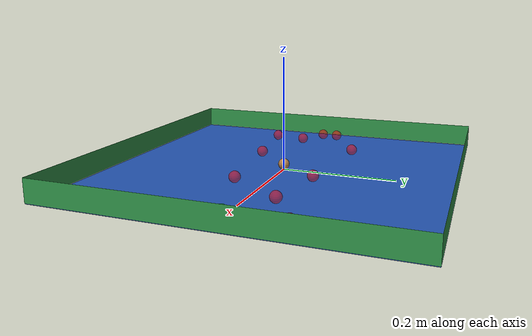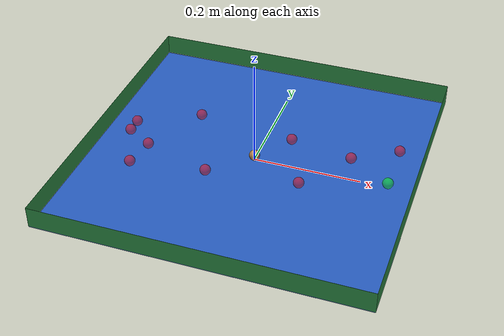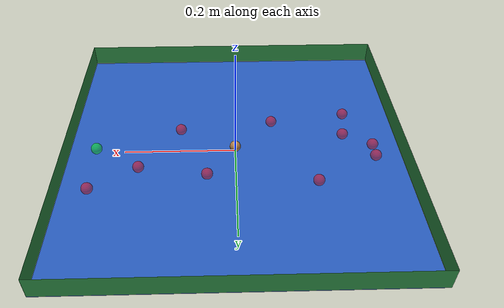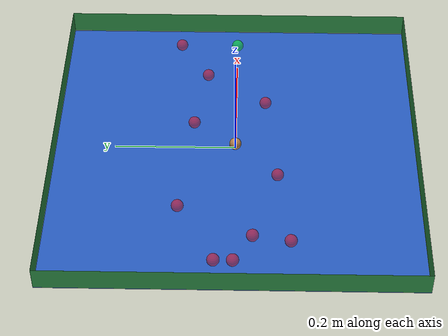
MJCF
<mujoco model="Particle Control">
  <include file="../common.xml"/>
  <!-- modified from: https://github.com/google-deepmind/dm_control/blob/main/dm_control/suite/point_mass.xml -->
  <include file="particle_modified.xml" />

  <size memory="10K"/>

  <custom>
    <numeric name="task_risk" data="1" />
    <numeric name="agent_planner" data="0" />
    <numeric name="agent_horizon" data="0.5" />
    <numeric name="agent_timestep" data="0.01" />
    <numeric name="agent_policy_width" data="0.0015" />
    <numeric name="sampling_spline_points" data="5" />
    <numeric name="sampling_exploration" data="0.01" />
    <numeric name="gradient_spline_points" data="5" />
  </custom>

  <sensor>
    <user name="Position" dim="2" user="0 5.0 0.0 10.0" />
    <user name="Velocity" dim="2" user="0 0.1 0.0 1.0" />
    <user name="Control" dim="2" user="0 0.1 0.0 1.0" />
    <framepos name="trace0" objtype="site" objname="tip"/>
    <framepos name="position" objtype="site" objname="tip"/>
    <framelinvel name="velocity" objtype="site" objname="tip"/>
    <framepos name="goal" objtype="body" objname="goal"/>
  </sensor>

  <worldbody>
    <body name="goal" mocap="true" pos="0.25 0 0.01" quat="1 0 0 0">
        <geom type="sphere" size=".01" contype="0" conaffinity="0" rgba="0 1 0 .5"/>
    </body>
  </worldbody>

</mujoco>

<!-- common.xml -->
<mujoco>

  <visual>
    <headlight ambient=".4 .4 .4" diffuse=".8 .8 .8" specular="0.1 0.1 0.1"/>
    <map znear=".01"/>
    <quality shadowsize="2048"/>
    <global elevation="-15"/>
  </visual>

  <asset>
    <texture name="blue_grid" type="2d" builtin="checker" rgb1=".02 .14 .44" rgb2=".27 .55 1" width="300" height="300" mark="edge" markrgb="1 1 1"/>
    <material name="blue_grid" texture="blue_grid" texrepeat="1 1" texuniform="true" reflectance=".2"/>

    <texture name="grey_grid" type="2d" builtin="checker" rgb1=".26 .26 .26" rgb2=".6 .6 .6" width="300" height="300" mark="edge" markrgb="1 1 1"/>
    <material name="grey_grid" texture="grey_grid" texrepeat="1 1" texuniform="true" reflectance=".2"/>
    <texture name="skybox" type="skybox" builtin="gradient" rgb1=".66 .79 1" rgb2=".9 .91 .93" width="800" height="800"/>

    <material name="self" rgba=".7 .5 .3 1"/>
    <material name="self_default" rgba=".7 .5 .3 1"/>
    <material name="self_highlight" rgba="0 .5 .3 1"/>
    <material name="effector" rgba=".7 .4 .2 1"/>
    <material name="effector_default" rgba=".7 .4 .2 1"/>
    <material name="effector_highlight" rgba="0 .5 .3 1"/>
    <material name="decoration" rgba=".2 .6 .3 1"/>
    <material name="eye" rgba="0 .2 1 1"/>
    <material name="target" rgba=".6 .3 .3 1"/>
    <material name="target_default" rgba=".6 .3 .3 1"/>
    <material name="target_highlight" rgba=".6 .3 .3 .4"/>
    <material name="site" rgba=".5 .5 .5 .3"/>
  </asset>
</mujoco>

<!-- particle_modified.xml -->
<mujoco model="Particle">
  <option timestep="0.01">
    <flag contact="enable" multiccd="enable"/>
  </option>

  <default>
    <joint type="hinge" axis="0 0 1" limited="true" range="-.29 .29" damping="1"/>
    <motor gear=".1" ctrlrange="-1 1" ctrllimited="true"/>
  </default>

  <worldbody>
    <body name="goal" mocap="true" pos="0.25 0 0.01" quat="1 0 0 0">
        <geom type="sphere" name="goal" size=".01" contype="0" conaffinity="0" rgba="0 1 0 .5"/>
    </body>
    <body name="obstacle_0" mocap="true" pos="-0.25 0 0.01" quat="1 0 0 0">
      <geom type="sphere" name="obstacle_0" size=".01" rgba="1 0 0 .5"/>
    </body>
    <body name="obstacle_1" mocap="true" pos="0.17 0.05 0.01" quat="1 0 0 0">
        <geom type="sphere" name="obstacle_1" size=".01" rgba="1 0 0 .5"/>
    </body>
    <body name="obstacle_2" mocap="true" pos="0.1 -0.05 0.01" quat="1 0 0 0">
        <geom type="sphere" name="obstacle_2" size=".01" rgba="1 0 0 .5"/>
    </body>
    <body name="obstacle_3" mocap="true" pos="0.05 0.07 0.01" quat="1 0 0 0">
        <geom type="sphere" name="obstacle_3" size=".01" rgba="1 0 0 .5"/>
    </body>
    <body name="obstacle_4" mocap="true" pos="-0.07 -0.07 0.01" quat="1 0 0 0">
        <geom type="sphere" name="obstacle_4" size=".01" rgba="1 0 0 .5"/>
    </body>
    <body name="obstacle_5" mocap="true" pos="-0.14 0.09 0.01" quat="1 0 0 0">
      <geom type="sphere" name="obstacle_5" size=".01" rgba="1 0 0 .5"/>
    </body>
    <body name="obstacle_6" mocap="true" pos="-0.21 -0.09 0.01" quat="1 0 0 0">
      <geom type="sphere" name="obstacle_6" size=".01" rgba="1 0 0 .5"/>
    </body>
    <body name="obstacle_7" mocap="true" pos="-0.25 0.03 0.01" quat="1 0 0 0">
      <geom type="sphere" name="obstacle_7" size=".01" rgba="1 0 0 .5"/>
    </body>
    <body name="obstacle_8" mocap="true" pos="-0.2 -0.03 0.01" quat="1 0 0 0">
      <geom type="sphere" name="obstacle_8" size=".01" rgba="1 0 0 .5"/>
    </body>
    <body name="obstacle_9" mocap="true" pos="0.25 0.1 0.01" quat="1 0 0 0">
      <geom type="sphere" name="obstacle_9" size=".01" rgba="1 0 0 .5"/>
    </body>
    <light name="light" pos="0 0 1"/>
    <camera name="fixed" pos="0 0 .75" quat="1 0 0 0"/>
    <geom name="ground" type="plane" contype="0" conaffinity="0" pos="0 0 0" size=".3 .3 .1" material="blue_grid"/>
    <geom name="wall_x" type="plane" contype="0" conaffinity="0" pos="-.3 0 .02" zaxis="1 0 0"  size=".02 .3 .02" material="decoration"/>
    <geom name="wall_y" type="plane" contype="0" conaffinity="0" pos="0 -.3 .02" zaxis="0 1 0"  size=".3 .02 .02" material="decoration"/>
    <geom name="wall_neg_x" type="plane" contype="0" conaffinity="0" pos=".3 0 .02" zaxis="-1 0 0"  size=".02 .3 .02" material="decoration"/>
    <geom name="wall_neg_y" type="plane" contype="0" conaffinity="0" pos="0 .3 .02" zaxis="0 -1 0"  size=".3 .02 .02" material="decoration"/>

    <body name="rigidmass" pos="0 0 .01">
      <camera name="cam0" pos="0 -0.3 0.3" xyaxes="1 0 0 0 0.7 0.7"/>
      <joint name="root_x" type="slide"  pos="0 0 0" axis="1 0 0" />
      <joint name="root_y" type="slide"  pos="0 0 0" axis="0 1 0" />
      <geom name="rigidmass" type="sphere" size=".01" material="self" mass="0.03"/>
      <site name="tip" pos="0 0 0" size="0.01"/>
    </body>
  </worldbody>

  <actuator>
    <motor name="x_motor" joint="root_x" gear="1" ctrllimited="true" ctrlrange="-1 1"/>
    <motor name="y_motor" joint="root_y" gear="1" ctrllimited="true" ctrlrange="-1 1"/>
  </actuator>
</mujoco>
